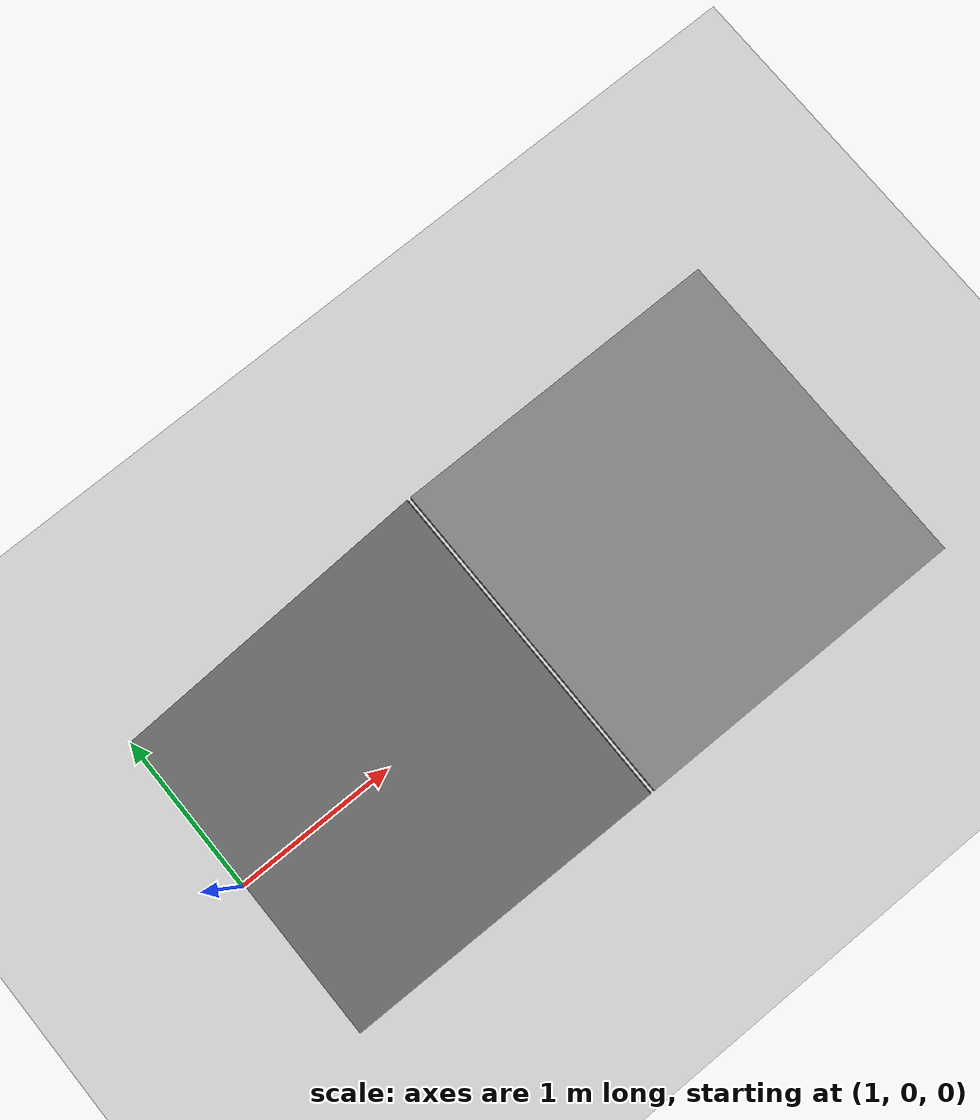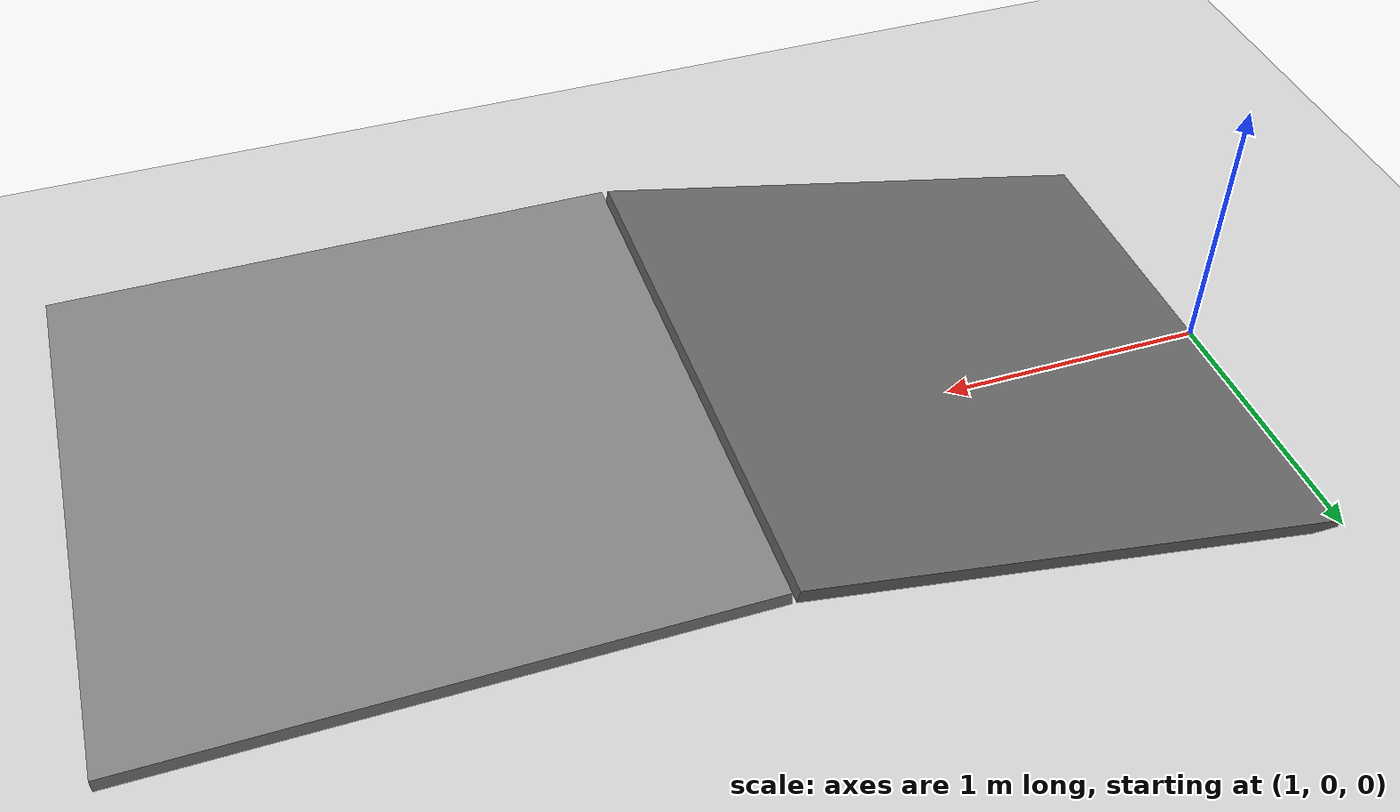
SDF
<?xml version="1.0" ?>
<sdf version="1.8">
  <world name="ramp">
    <physics name="1ms" type="ignored">
      <max_step_size>0.001</max_step_size>
      <real_time_factor>1.0</real_time_factor>
    </physics>
    <plugin filename="gz-sim-physics-system" name="gz::sim::systems::Physics" />
    <plugin filename="gz-sim-user-commands-system" name="gz::sim::systems::UserCommands" />
    <plugin filename="gz-sim-scene-broadcaster-system" name="gz::sim::systems::SceneBroadcaster" />

    <light type="directional" name="sun">
      <cast_shadows>true</cast_shadows>
      <pose>0 0 10 0 0 0</pose>
      <diffuse>0.8 0.8 0.8 1</diffuse>
      <specular>0.2 0.2 0.2 1</specular>
      <attenuation>
        <range>1000</range>
        <constant>0.9</constant>
        <linear>0.01</linear>
        <quadratic>0.001</quadratic>
      </attenuation>
      <direction>-0.5 0.1 -0.9</direction>
    </light>

    <model name="ground_plane">
      <static>true</static>
      <link name="link">
        <collision name="collision">
          <geometry>
            <plane>
              <normal>0 0 1</normal>
            </plane>
          </geometry>
        </collision>
        <visual name="visual">
          <geometry>
            <plane>
              <normal>0 0 1</normal>
              <size>100 100</size>
            </plane>
          </geometry>
          <material>
            <ambient>0.8 0.8 0.8 1</ambient>
            <diffuse>0.8 0.8 0.8 1</diffuse>
            <specular>0.8 0.8 0.8 1</specular>
          </material>
        </visual>
      </link>
    </model>

    <!-- Ramp Model -->
    <model name="ramp_course">
      <static>true</static>

      <!-- Inclined Plane -->
      <!-- Pitch of -0.2 radians is roughly 11.5 degrees -->
      <link name="ramp_incline">
        <pose>2.0 0 0.2 0 -0.2 0</pose>
        <collision name="col_ramp">
          <geometry>
            <box><size>2.0 2.0 0.05</size></box>
          </geometry>
        </collision>
        <visual name="vis_ramp">
          <geometry>
            <box><size>2.0 2.0 0.05</size></box>
          </geometry>
          <material><ambient>0.4 0.4 0.4 1</ambient></material>
        </visual>
      </link>

      <!-- Top Platform -->
      <!-- Z height is roughly equivalent to the top of the ramp incline -->
      <link name="top_platform">
        <pose>4.0 0 0.40 0 0 0</pose>
        <collision name="col_plat">
          <geometry>
            <box><size>2.0 2.0 0.05</size></box>
          </geometry>
        </collision>
        <visual name="vis_plat">
          <geometry>
            <box><size>2.0 2.0 0.05</size></box>
          </geometry>
          <material><ambient>0.5 0.5 0.5 1</ambient></material>
        </visual>
      </link>

    </model>
  </world>
</sdf>
